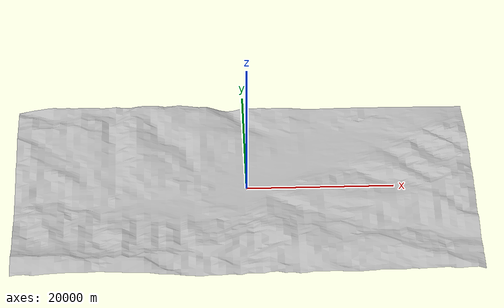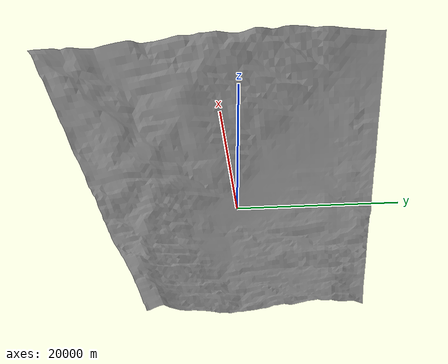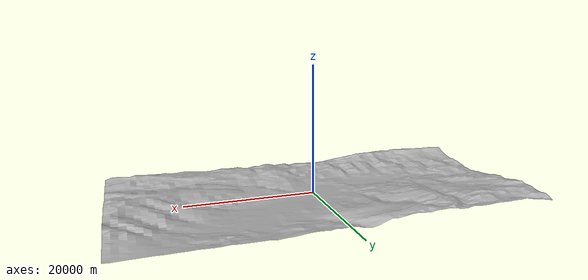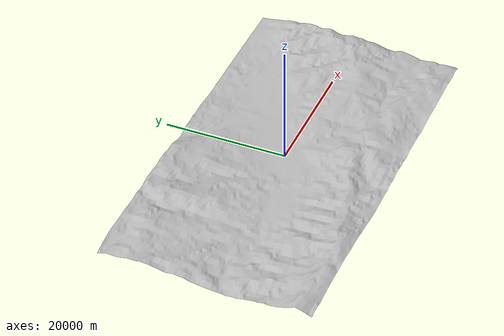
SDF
<?xml version="1.0" ?>
<sdf version="1.6">
  <model name="background_cerdanya_droneport">
    <static>true</static>
    <link name="link">
      <pose>-211.0 -138.8 -1151.0 0 0 0</pose>
      <collision name="collision">
        <geometry>
          <mesh>
            <uri>model://background_cerdanya_droneport/meshes/very_large_cerdanya_centered.dae</uri>
            <scale>1.0 1.0 1.0</scale>
          </mesh>
        </geometry>
      </collision>
      <visual name="branch">
        <geometry>
          <mesh>
            <uri>model://background_cerdanya_droneport/meshes/very_large_cerdanya_centered.dae</uri>
            <scale>1.0 1.0 1.0</scale>
          </mesh>
        </geometry>
        <material>
          <script>
            <uri>model://background_cerdanya_droneport/materials/scripts/</uri>
            <uri>model://background_cerdanya_droneport/materials/textures/</uri>
            <name>CerdanyaDroneport/Background</name>
          </script>
        </material>
      </visual>
    </link>
  </model>
</sdf>
